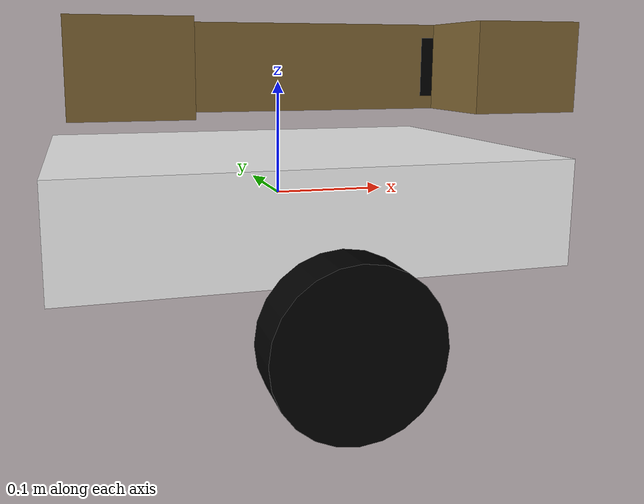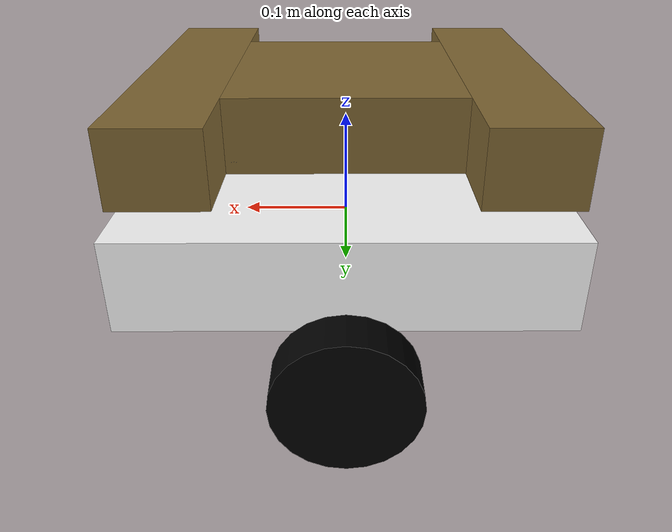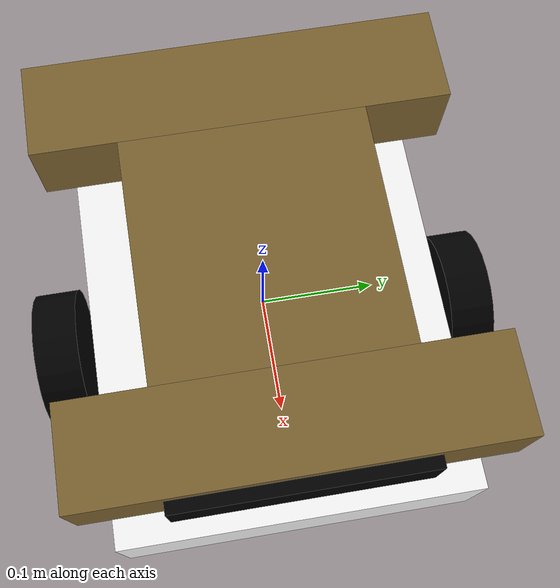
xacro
<?xml version="1.0"?>
	<robot xmlns:xacro="http://www.ros.org/wiki/xacro" name="Robot">
<!--=======================XACRO DEFINE==============================!-->

		<xacro:property name="PI" value="3.141592"/>
		<xacro:property name="wheel_radius" value="0.0635"/>
		<xacro:property name="base_size_z" value="0.086"/>
		<xacro:property name="upper_size_z" value="0.065"/>

		<xacro:macro name="wheel_shape">
			<visual>
				<geometry>
					<cylinder length="0.04" radius="${wheel_radius}"/>
				</geometry>
				<origin rpy="0 0 0" xyz="0 0 0.1145"/>
				<material name="black">
					<color rgba="0 0 0 1"/>
				</material>
			</visual>
		</xacro:macro>

<!--=======================LINK DEFINE==============================!-->

		<link name="base_link">
			<visual>
				<geometry>
					<box size="0.400 .300 ${base_size_z}"/>
				</geometry>
				<origin rpy="0 0 0" xyz="0 0 0"/>
				<material name="white">
					<color rgba="1 1 1 1"/>
				</material>
			</visual>
		</link>

		<link name="upper_link">
			<visual>
				<geometry>
					<box size=".080 0.340 ${upper_size_z}"/>
				</geometry>
				<origin rpy="0 0 0" xyz=".140 0 ${upper_size_z/2}"/>
				<material name="brown">
					<color rgba="0.5 0.4 0.2 1"/>
				</material>
			</visual>
			<visual>
				<geometry>
					<box size=".080 0.340 ${upper_size_z}"/>
				</geometry>
				<origin rpy="0 0 0" xyz="-0.140 0 ${upper_size_z/2}"/>
				<material name="brown">
					<color rgba="0.5 0.4 0.2 1"/>
				</material>
			</visual>
			<visual>
				<geometry>
					<box size="0.200 .200 ${upper_size_z}"/>
				</geometry>
				<origin rpy="0 0 0" xyz="0 0 ${upper_size_z/2}"/>
				<material name="brown">
					<color rgba="0.5 0.4 0.2 1"/>
				</material>
			</visual>
		</link>

		<link name="kinect">
			<visual>
				<geometry>
					<box size="0.1 .2 ${upper_size_z-0.02}"/>
				</geometry>
				<origin xyz="0 0 0"/>
				<material name="black">
					<color rgba="0 0 0 1"/>
				</material>
			</visual>
		</link>

		<link name="wheel_1">
			<xacro:wheel_shape/>
		</link>
		<link name="wheel_2">s
			<xacro:wheel_shape/>
		</link>

<!--=======================JOINT DEFINE==============================!-->

		<joint name="B2U" type="revolute">
			<parent link="base_link"/>
			<child link="upper_link"/>
			<origin xyz="0 0 ${base_size_z/2+0.03809}" rpy="0 0 0"/>
			<axis xyz="0 0 1"/>
			<limit effort="1000.0" lower="${-PI}" upper="${PI}" velocity="0.5"/>
		</joint>

		<joint name="U2K" type="fixed">
			<parent link="upper_link"/>
			<child link="kinect"/>
			<origin xyz="0.140 0 ${upper_size_z/2}" rpy="0 0 0"/>
		</joint>

		<joint name="B2W1" type="continuous">
			<parent link="base_link"/>
			<child link="wheel_1"/>
			<origin xyz="0 0.07788 ${-(base_size_z/2 + 0.0305)}" rpy="0 ${PI/2} ${PI/2}"/>
			<axis xyz="0 0 1"/>
		</joint>

		<joint name="B2W2" type="continuous">
			<parent link="base_link"/>
			<child link="wheel_2"/>
			<origin xyz="0 -0.07788 ${-(base_size_z/2 + 0.0305)}" rpy="${PI} ${PI/2} ${PI/2}"/>
			<axis xyz="0 0 1"/>
		</joint>
	</robot>
